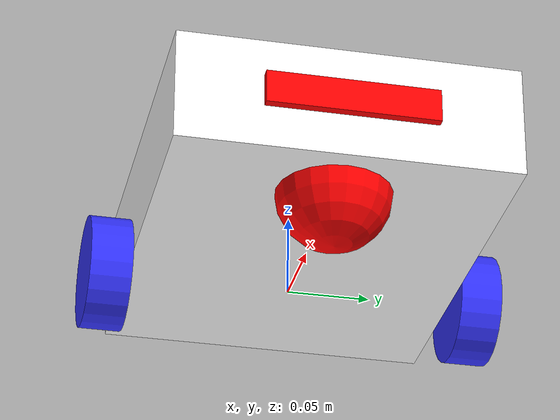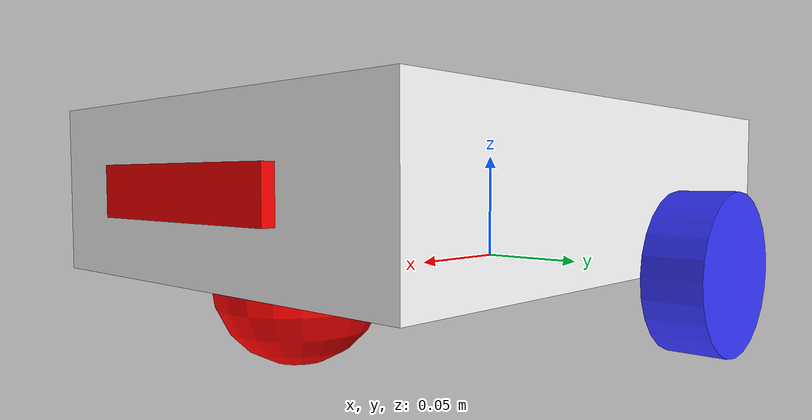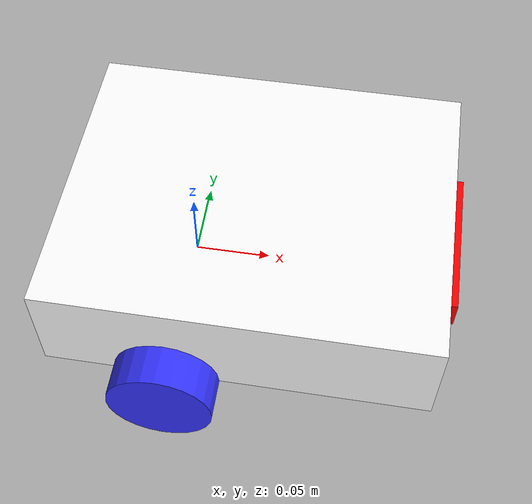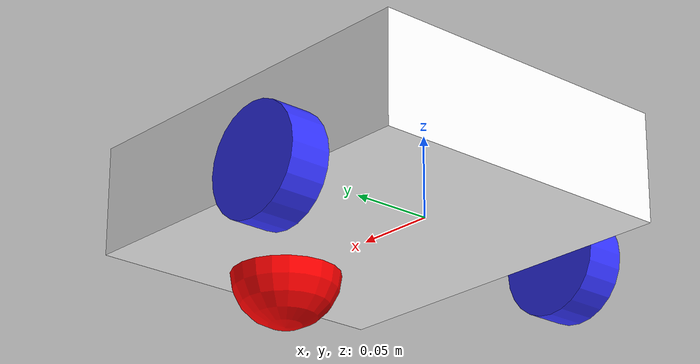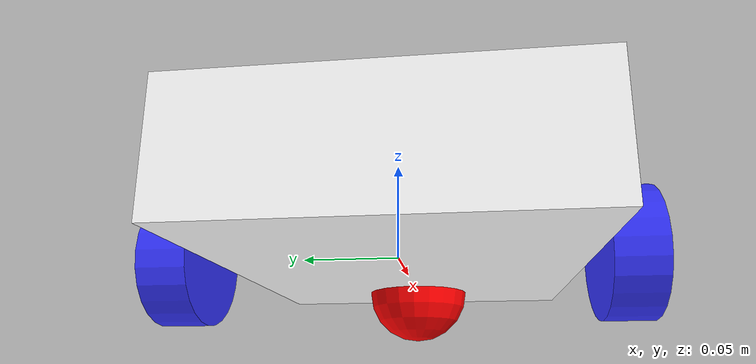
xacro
<?xml version="1.0"?>
<robot xmlns:xacro="http://www.ros.org/wiki/xacro"  name="robot">
  <xacro:arg name="use_ros2_control" default="true"/>
  <xacro:arg name="sim_mode" default="false"/>
  <xacro:if value="$(arg use_ros2_control)">
    <xacro:include filename="ros2_control_real.xacro" />
  </xacro:if>
  <xacro:unless value="$(arg use_ros2_control)">
    <xacro:include filename="gazebo_control.xacro" />
  </xacro:unless>
  <xacro:include filename="robot_core.xacro"/>
  <xacro:include filename="lidar.xacro"/>
  <xacro:include filename="camera.xacro"/>
</robot>

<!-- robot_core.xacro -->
<robot xmlns:xacro="http://www.ros.org/wiki/xacro">
  <xacro:include filename="inertial_macro.xacro"/>

 <material name="white">
    <color rgba=" 1 1 1 1" />
   </material>
   <material name="orange">
    <color rgba=" 1 0.3 0.1 1" />
   </material>
   <material name="blue">
    <color rgba=" 0.2 0.2 1 1" />
   </material>
   <material name="black">
    <color rgba=" 0 0 0 1" />
   </material>
   <material name="red">
    <color rgba=" 1 0 0 1" />
   </material>

<!-- BASE LINK -->
   <link name="base_link">

   </link>

   <joint name="chassis_joint" type="fixed">
    <parent link="base_link"/>
    <child link="chassis_link"/>
    <origin xyz="-0.08 0.0 0.0" rpy="0.0 0.0 0.0"/>
   </joint>

  <!-- CHASSIS LINK  -->
  <link name="chassis_link">
    <visual>
      <geometry>
        <box size="0.247 0.2 0.068"/>
      </geometry>
      <material name="white" />
      <origin xyz="0.1235 0.0 0.034" rpy="0.0 0.0 0.0"/>
    </visual>
     <collision>
        <geometry>
          <box size="0.247 0.2 0.068"/>
        </geometry>
        <origin xyz="0.1235 0.0 0.034" rpy="0.0 0.0 0.0"/>
      </collision>
      <xacro:inertial_box mass="0.1" x="0.247" y="0.2" z="0.068">
        <origin xyz="0.1235 0.0 0.034" rpy="0.0 0.0 0.0"/>
      </xacro:inertial_box >
  </link>

  <gazebo reference="chassis">
    <material>Gazebo/White</material>
  </gazebo>

  <!-- LEFT WHEEL -->
  <joint name="left_wheel_joint" type="continuous">
    <parent link="base_link"/>
    <child link="left_wheel_link"/>
    <axis xyz="0 0 1"/>
    <origin xyz="0 0.1125 0" rpy="-${pi/2} 0 0"/>
  </joint>

  <link name="left_wheel_link">
    <visual>
    <geometry>
      <cylinder radius="0.03375" length="0.025"/>
    </geometry>
    <origin xyz="0.0 0.0 0.0" rpy="0.0 0.0 0.0"/>
    <material name="blue" />
    </visual>
    <collision>
      <geometry>
        <cylinder radius="0.03375" length="0.025"/>
      </geometry>
      <origin xyz="0.0 0.0 0.0" rpy="0.0 0.0 0.0"/>
    </collision>
    <xacro:inertial_cylinder mass="0.5" radius="0.0675" length="0.025" >
      <origin xyz="0.0 0.0 0.0" rpy="0.0 0.0 0.0"/>
    </xacro:inertial_cylinder >
  </link>
  <gazebo reference="left_wheel_link">
    <material>Gazebo/Blue</material>
  </gazebo>

    <!-- RIGHT WHEEL -->
  <joint name="right_wheel_joint" type="continuous">
    <parent link="base_link"/>
    <child link="right_wheel_link"/>
    <axis xyz="0 0 -1"/>
    <origin xyz="0 -0.1125  0" rpy="${pi/2} 0 0"/>
  </joint>

  <link name="right_wheel_link">
    <visual>
    <geometry>
      <cylinder radius="0.03375" length="0.025"/>
    </geometry>
    <origin xyz="0.0 0.0 0.0" rpy="0.0 0.0 0.0"/>
    <material name="blue" />
    </visual>
    <collision>
      <geometry>
        <cylinder radius="0.03375" length="0.025"/>
      </geometry>
      <origin xyz="0.0 0.0 0.0" rpy="0.0 0.0 0.0"/>
    </collision>
     <xacro:inertial_cylinder mass="0.5" radius="0.0675" length="0.025" >
           <origin xyz="0.0 0.0 0.0" rpy="0.0 0.0 0.0"/>
     </xacro:inertial_cylinder >
  </link>

  <gazebo reference="right_wheel_link">
    <material>Gazebo/Blue</material>
  </gazebo>

  <!-- CASTER WHEEL LINK -->

  <joint name="caster_wheel_joint" type="fixed">
    <parent link="chassis_link"/>
    <child link="caster_wheel_link"/>
    <origin xyz="0.185 0.0 0.0" rpy="0.0 0.0 0.0"/>
  </joint>

  <link name="caster_wheel_link">
    <visual>
      <geometry>
        <sphere radius="0.03375"/>
      </geometry>
      <material name="red" />
    <origin xyz="0.016875 0.0 0.0" rpy="0.0 0.0 0.0"/>
    </visual>
    <collision>
      <origin xyz="0.016875 0.0 0.0" rpy="0.0 0.0 0.0"/>
      <geometry>
        <sphere radius="0.03375"/>
      </geometry>
    </collision>
     <xacro:inertial_sphere mass="0.2" radius="0.03375">
      <origin xyz="0.016875 0.0 0.0" rpy="0.0 0.0 0.0"/>
     </xacro:inertial_sphere>
  </link>

  <gazebo reference="caster_wheel_link">
    <material>Gazebo/Black</material>
    <mu1  value="0.05"/>
    <mu2  value="0.05"/>
  </gazebo>

</robot>

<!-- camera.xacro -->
<robot xmlns:xacro="http://www.ros.org/wiki/xacro" >

    <joint name="camera_joint" type="fixed">
        <parent link="chassis_link"/>
        <child link="camera_link"/>
        <origin xyz="0.247 0.0 0.034" rpy="0.0 0.0 0.0"/>
    </joint>

    <link name="camera_link">
        <visual>
            <geometry>
                <box size="0.005 0.1 0.02"/>
            </geometry>
            <origin xyz="0.005 0.0 0.0" rpy="0.0 0.0 0.0"/>
            <material name="red"/>
        </visual>
        <collision>
            <geometry>
                <box size="0.02 0.1 0.05"/>
            </geometry>
            <material name="red"/>
            <origin xyz="0.0 0.0 0.0" rpy="0.0 0.0 0.0"/>

        </collision>
        <xacro:inertial_box mass="0.1" x="0.005" y="0.1" z="0.02">
        <origin xyz="0.0 0.0 0.0" rpy="0.0 0.0 0.0"/>
      </xacro:inertial_box >
    </link>

    <joint name="camera_optical_joint" type="fixed">
        <parent link="camera_link"/>
        <child link="camera_link_optical"/>
        <origin xyz="0 0 0" rpy="${-pi/2} 0 ${-pi/2}"/>
    </joint>

    <link name="camera_link_optical"></link>

    <gazebo reference="camera_link">
        <material>Gazebo/Red</material>

        <sensor name="camera" type="camera">
            <pose> 0 0 0 0 0 0 </pose>
            <visualize>true</visualize>
            <update_rate>10</update_rate>
            <camera>
                <horizontal_fov>1.089</horizontal_fov>
                <image>
                    <format>R8G8B8</format>
                    <width>640</width>
                    <height>480</height>
                </image>
                <clip>
                    <near>0.05</near>
                    <far>8.0</far>
                </clip>
            </camera>
            <plugin name="camera_controller" filename="libgazebo_ros_camera.so">
                <frame_name>camera_link_optical</frame_name>
            </plugin>
        </sensor>
    </gazebo>

</robot>
